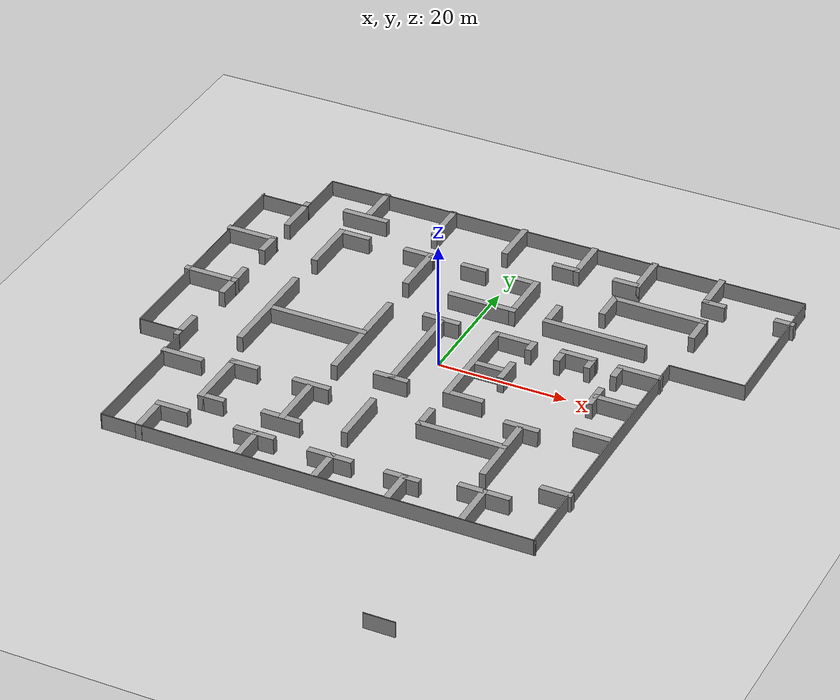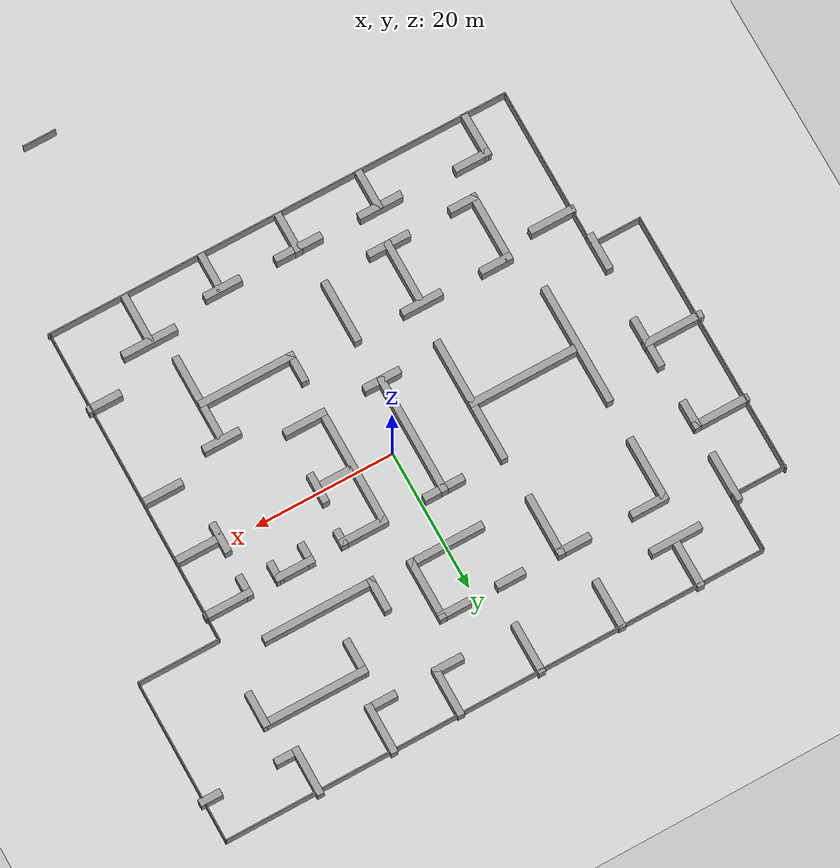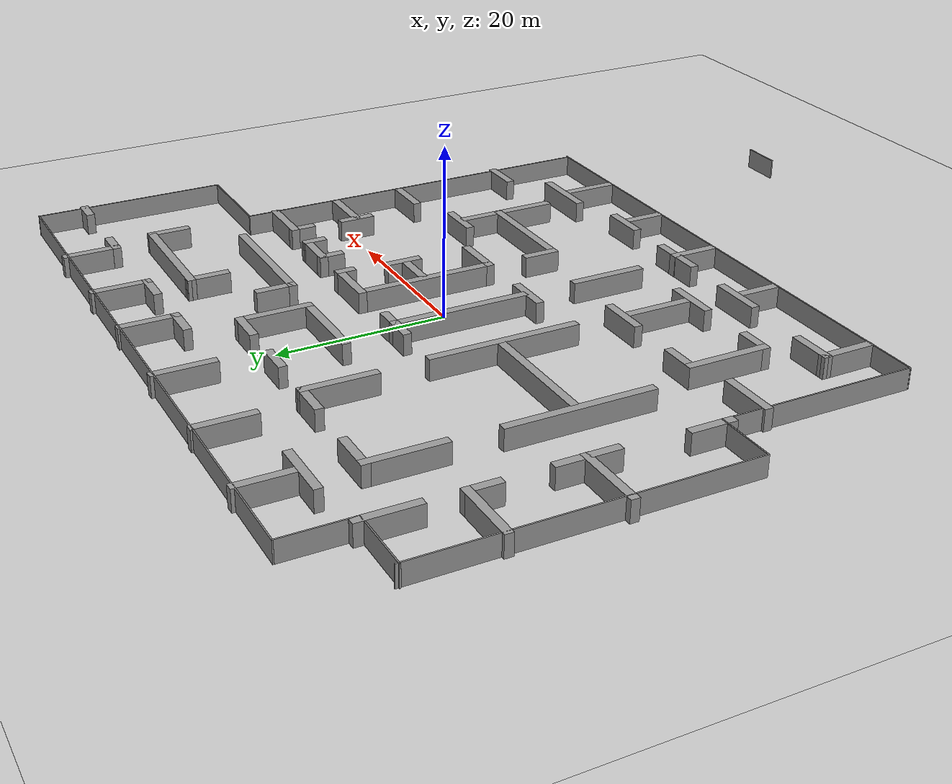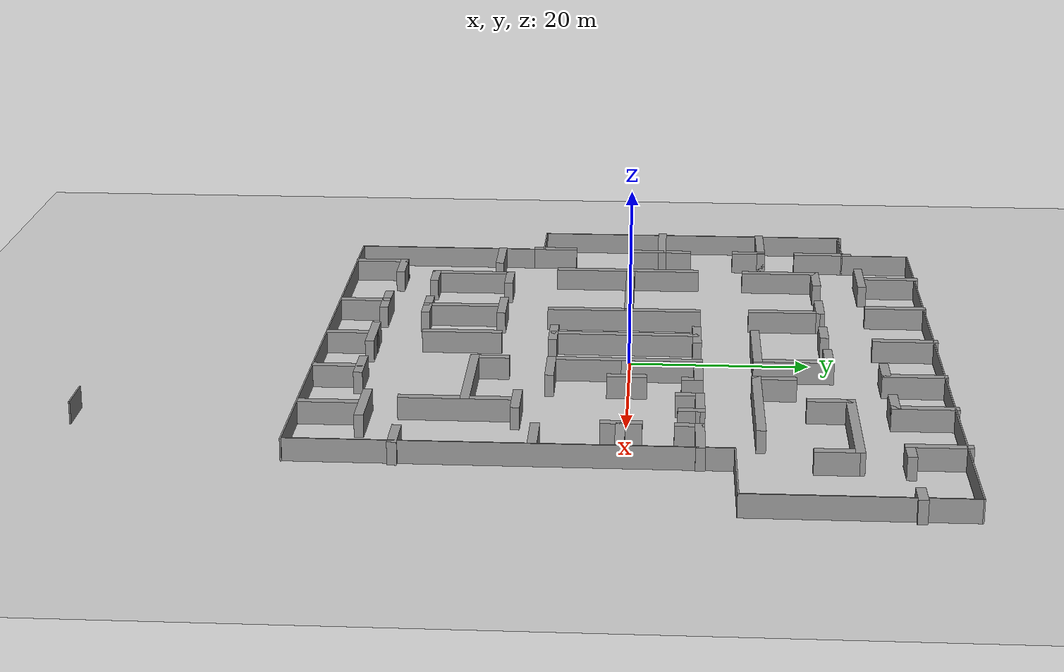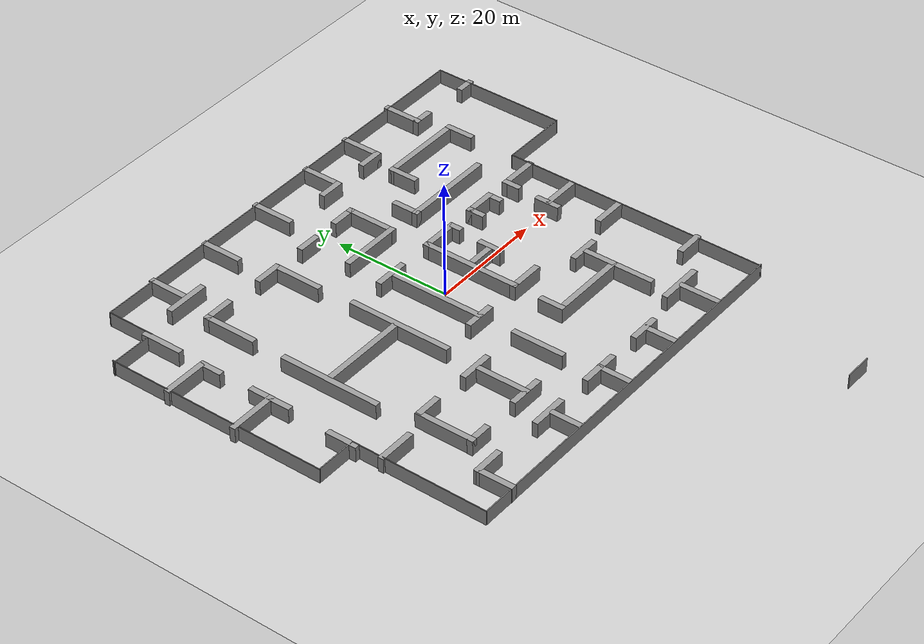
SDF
<sdf version="1.7">
 <world name="default">
  <light name="sun" type="directional">
   <pose>0 0 10 0 -0 0</pose>
   <diffuse>0.8 0.8 0.8 1</diffuse>
   <specular>0.2 0.2 0.2 1</specular>
   <attenuation>
    <range>1000</range>
    <constant>0.9</constant>
    <linear>0.01</linear>
    <quadratic>0.001</quadratic>
   </attenuation>
   <direction>-0.5 0.1 -0.9</direction>
   <spot><inner_angle>0</inner_angle><outer_angle>0</outer_angle><falloff>0</falloff></spot>
  </light>
  <model name="ground_plane">
   <static>1</static>
   <link name="Wall_split_y">
    <collision name="Wall_split_y_Collision">
     <geometry><box><size>1 100 2.5</size></box></geometry>
     <pose>4.0 0 1.25 0 -0 0</pose>
    </collision>
    <visual name="Wall_split_y_Visual">
     <pose>4.0 0 1.25 0 -0 0</pose>
     <geometry><box><size>1 100 2.5</size></box></geometry>
     <material>
      <script><uri>file://media/materials/scripts/gazebo.material</uri><name>Gazebo/Grey</name></script>
      <ambient>1 1 1 1</ambient>
     </material>
     <meta><layer>0</layer></meta>
    </visual>
   </link>
   <link name="link">
    <collision name="collision">
     <geometry><plane><normal>0 0 1</normal><size>100 100</size></plane></geometry>
     <surface><friction><ode><mu>100</mu><mu2>50</mu2></ode></friction></surface>
    </collision>
    <visual name="visual">
     <cast_shadows>0</cast_shadows>
     <geometry><plane><normal>0 0 1</normal><size>100 100</size></plane></geometry>
     <material>
      <script><uri>file://media/materials/scripts/gazebo.material</uri><name>Gazebo/Grey</name></script>
     </material>
    </visual>
   </link>
  </model>
  <gravity>0 0 -9.8</gravity>
  <magnetic_field>6e-06 2.3e-05 -4.2e-05</magnetic_field>
  <atmosphere type="adiabatic"/>
  <physics type="ode">
   <max_step_size>0.001</max_step_size>
   <real_time_factor>1</real_time_factor>
   <real_time_update_rate>1000</real_time_update_rate>
  </physics>
  <scene><ambient>0.4 0.4 0.4 1</ambient><background>0.7 0.7 0.7 1</background><shadows>1</shadows></scene>
  <spherical_coordinates>
   <surface_model>EARTH_WGS84</surface_model>
   <latitude_deg>0</latitude_deg>
   <longitude_deg>0</longitude_deg>
   <elevation>0</elevation>
   <heading_deg>0</heading_deg>
  </spherical_coordinates>
  <model name="map8">
   <pose>-0.03691 -11.806 0 0 -0 0</pose>
   <link name="Wall_0">
    <collision name="Wall_0_Collision">
     <geometry><box><size>38 0.15 2.5</size></box></geometry>
     <pose>0 0 1.25 0 -0 0</pose>
    </collision>
    <visual name="Wall_0_Visual">
     <pose>0 0 1.25 0 -0 0</pose>
     <geometry><box><size>38 0.15 2.5</size></box></geometry>
     <material>
      <script><uri>file://media/materials/scripts/gazebo.material</uri><name>Gazebo/Grey</name></script>
      <ambient>1 1 1 1</ambient>
     </material>
     <meta><layer>0</layer></meta>
    </visual>
    <pose>-42.5764 19.2242 0 0 -0 -1.5708</pose>
   </link>
   <link name="Wall_1">
    <collision name="Wall_1_Collision">
     <geometry><box><size>7.25 0.15 2.5</size></box></geometry>
     <pose>0 0 1.25 0 -0 0</pose>
    </collision>
    <visual name="Wall_1_Visual">
     <pose>0 0 1.25 0 -0 0</pose>
     <geometry><box><size>7.25 0.15 2.5</size></box></geometry>
     <material>
      <script><uri>file://media/materials/scripts/gazebo.material</uri><name>Gazebo/Grey</name></script>
      <ambient>1 1 1 1</ambient>
     </material>
     <meta><layer>0</layer></meta>
    </visual>
    <pose>-39.0264 0.299249 0 0 -0 0</pose>
   </link>
   <link name="Wall_100">
    <collision name="Wall_100_Collision">
     <geometry><box><size>7.85006 1 2.5</size></box></geometry>
     <pose>0 0 1.25 0 -0 0</pose>
    </collision>
    <visual name="Wall_100_Visual">
     <pose>0 0 1.25 0 -0 0</pose>
     <geometry><box><size>7.85006 1 2.5</size></box></geometry>
     <material>
      <script><uri>file://media/materials/scripts/gazebo.material</uri><name>Gazebo/Grey</name></script>
      <ambient>1 1 1 1</ambient>
     </material>
     <meta><layer>0</layer></meta>
    </visual>
    <pose>20.4101 -15.7299 0 0 -0 0</pose>
   </link>
   <link name="Wall_102">
    <collision name="Wall_102_Collision">
     <geometry><box><size>7.35 1 2.5</size></box></geometry>
     <pose>0 0 1.25 0 -0 0</pose>
    </collision>
    <visual name="Wall_102_Visual">
     <pose>0 0 1.25 0 -0 0</pose>
     <geometry><box><size>7.35 1 2.5</size></box></geometry>
     <material>
      <script><uri>file://media/materials/scripts/gazebo.material</uri><name>Gazebo/Grey</name></script>
      <ambient>1 1 1 1</ambient>
     </material>
     <meta><layer>0</layer></meta>
    </visual>
    <pose>20.3153 -19.0484 0 0 -0 -1.5708</pose>
   </link>
   <link name="Wall_104">
    <collision name="Wall_104_Collision">
     <geometry><box><size>4.75 0.15 2.5</size></box></geometry>
     <pose>0 0 1.25 0 -0 0</pose>
    </collision>
    <visual name="Wall_104_Visual">
     <pose>0 0 1.25 0 -0 0</pose>
     <geometry><box><size>4.75 0.15 2.5</size></box></geometry>
     <material>
      <script><uri>file://media/materials/scripts/gazebo.material</uri><name>Gazebo/Grey</name></script>
      <ambient>1 1 1 1</ambient>
     </material>
     <meta><layer>0</layer></meta>
    </visual>
    <pose>19.9492 -46.4469 0 0 -0 0</pose>
   </link>
   <link name="Wall_106">
    <collision name="Wall_106_Collision">
     <geometry><box><size>5.6 1 2.5</size></box></geometry>
     <pose>0 0 1.25 0 -0 0</pose>
    </collision>
    <visual name="Wall_106_Visual">
     <pose>0 0 1.25 0 -0 0</pose>
     <geometry><box><size>5.6 1 2.5</size></box></geometry>
     <material>
      <script><uri>file://media/materials/scripts/gazebo.material</uri><name>Gazebo/Grey</name></script>
      <ambient>1 1 1 1</ambient>
     </material>
     <meta><layer>0</layer></meta>
    </visual>
    <pose>9.10866 -19.9767 0 0 -0 -1.5708</pose>
   </link>
   <link name="Wall_108">
    <collision name="Wall_108_Collision">
     <geometry><box><size>5.34979 1 2.5</size></box></geometry>
     <pose>0 0 1.25 0 -0 0</pose>
    </collision>
    <visual name="Wall_108_Visual">
     <pose>0 0 1.25 0 -0 0</pose>
     <geometry><box><size>5.34979 1 2.5</size></box></geometry>
     <material>
      <script><uri>file://media/materials/scripts/gazebo.material</uri><name>Gazebo/Grey</name></script>
      <ambient>1 1 1 1</ambient>
     </material>
     <meta><layer>0</layer></meta>
    </visual>
    <pose>8.81006 -17.4709 0 0 -0 0</pose>
   </link>
   <link name="Wall_110">
    <collision name="Wall_110_Collision">
     <geometry><box><size>4.85021 1 2.5</size></box></geometry>
     <pose>0 0 1.25 0 -0 0</pose>
    </collision>
    <visual name="Wall_110_Visual">
     <pose>0 0 1.25 0 -0 0</pose>
     <geometry><box><size>4.85021 1 2.5</size></box></geometry>
     <material>
      <script><uri>file://media/materials/scripts/gazebo.material</uri><name>Gazebo/Grey</name></script>
      <ambient>1 1 1 1</ambient>
     </material>
     <meta><layer>0</layer></meta>
    </visual>
    <pose>29.2051 -11.4839 0 0 -0 3.14159</pose>
   </link>
   <link name="Wall_112">
    <collision name="Wall_112_Collision">
     <geometry><box><size>5.6 1 2.5</size></box></geometry>
     <pose>0 0 1.25 0 -0 0</pose>
    </collision>
    <visual name="Wall_112_Visual">
     <pose>0 0 1.25 0 -0 0</pose>
     <geometry><box><size>5.6 1 2.5</size></box></geometry>
     <material>
      <script><uri>file://media/materials/scripts/gazebo.material</uri><name>Gazebo/Grey</name></script>
      <ambient>1 1 1 1</ambient>
     </material>
     <meta><layer>0</layer></meta>
    </visual>
    <pose>28.2816 2.56125 0 0 -0 3.14159</pose>
   </link>
   <link name="Wall_114">
    <collision name="Wall_114_Collision">
     <geometry><box><size>4.35049 1 2.5</size></box></geometry>
     <pose>0 0 1.25 0 -0 0</pose>
    </collision>
    <visual name="Wall_114_Visual">
     <pose>0 0 1.25 0 -0 0</pose>
     <geometry><box><size>4.35049 1 2.5</size></box></geometry>
     <material>
      <script><uri>file://media/materials/scripts/gazebo.material</uri><name>Gazebo/Grey</name></script>
      <ambient>1 1 1 1</ambient>
     </material>
     <meta><layer>0</layer></meta>
    </visual>
    <pose>24.7471 11.3291 0 0 -0 -1.5708</pose>
   </link>
   <link name="Wall_116">
    <collision name="Wall_116_Collision">
     <geometry><box><size>6.5 1 2.5</size></box></geometry>
     <pose>0 0 1.25 0 -0 0</pose>
    </collision>
    <visual name="Wall_116_Visual">
     <pose>0 0 1.25 0 -0 0</pose>
     <geometry><box><size>6.5 1 2.5</size></box></geometry>
     <material>
      <script><uri>file://media/materials/scripts/gazebo.material</uri><name>Gazebo/Grey</name></script>
      <ambient>1 1 1 1</ambient>
     </material>
     <meta><layer>0</layer></meta>
    </visual>
    <pose>27.7851 11.2791 0 0 -0 0</pose>
   </link>
   <link name="Wall_118">
    <collision name="Wall_118_Collision">
     <geometry><box><size>3.10002 1 2.5</size></box></geometry>
     <pose>0 0 1.25 0 -0 0</pose>
    </collision>
    <visual name="Wall_118_Visual">
     <pose>0 0 1.25 0 -0 0</pose>
     <geometry><box><size>3.10002 1 2.5</size></box></geometry>
     <material>
      <script><uri>file://media/materials/scripts/gazebo.material</uri><name>Gazebo/Grey</name></script>
      <ambient>1 1 1 1</ambient>
     </material>
     <meta><layer>0</layer></meta>
    </visual>
    <pose>16.1686 18.4141 0 0 -0 1.56841</pose>
   </link>
   <link name="Wall_119">
    <collision name="Wall_119_Collision">
     <geometry><box><size>5.60601 1 2.5</size></box></geometry>
     <pose>0 0 1.25 0 -0 0</pose>
    </collision>
    <visual name="Wall_119_Visual">
     <pose>0 0 1.25 0 -0 0</pose>
     <geometry><box><size>5.60601 1 2.5</size></box></geometry>
     <material>
      <script><uri>file://media/materials/scripts/gazebo.material</uri><name>Gazebo/Grey</name></script>
      <ambient>1 1 1 1</ambient>
     </material>
     <meta><layer>0</layer></meta>
    </visual>
    <pose>18.4741 19.4586 0 0 -0 -0.002388</pose>
   </link>
   <link name="Wall_120">
    <collision name="Wall_120_Collision">
     <geometry><box><size>2.84995 1 2.5</size></box></geometry>
     <pose>0 0 1.25 0 -0 0</pose>
    </collision>
    <visual name="Wall_120_Visual">
     <pose>0 0 1.25 0 -0 0</pose>
     <geometry><box><size>2.84995 1 2.5</size></box></geometry>
     <material>
      <script><uri>file://media/materials/scripts/gazebo.material</uri><name>Gazebo/Grey</name></script>
      <ambient>1 1 1 1</ambient>
     </material>
     <meta><layer>0</layer></meta>
    </visual>
    <pose>20.7741 18.5281 0 0 -0 -1.57404</pose>
   </link>
   <link name="Wall_122">
    <collision name="Wall_122_Collision">
     <geometry><box><size>3.10002 1 2.5</size></box></geometry>
     <pose>0 0 1.25 0 -0 0</pose>
    </collision>
    <visual name="Wall_122_Visual">
     <pose>0 0 1.25 0 -0 0</pose>
     <geometry><box><size>3.10002 1 2.5</size></box></geometry>
     <material>
      <script><uri>file://media/materials/scripts/gazebo.material</uri><name>Gazebo/Grey</name></script>
      <ambient>1 1 1 1</ambient>
     </material>
     <meta><layer>0</layer></meta>
    </visual>
    <pose>25.0601 18.3141 0 0 -0 1.5708</pose>
   </link>
   <link name="Wall_123">
    <collision name="Wall_123_Collision">
     <geometry><box><size>6.85028 1 2.5</size></box></geometry>
     <pose>0 0 1.25 0 -0 0</pose>
    </collision>
    <visual name="Wall_123_Visual">
     <pose>0 0 1.25 0 -0 0</pose>
     <geometry><box><size>6.85028 1 2.5</size></box></geometry>
     <material>
      <script><uri>file://media/materials/scripts/gazebo.material</uri><name>Gazebo/Grey</name></script>
      <ambient>1 1 1 1</ambient>
     </material>
     <meta><layer>0</layer></meta>
    </visual>
    <pose>27.9851 19.3641 0 0 -0 0</pose>
   </link>
   <link name="Wall_125">
    <collision name="Wall_125_Collision">
     <geometry><box><size>6.5 1 2.5</size></box></geometry>
     <pose>0 0 1.25 0 -0 0</pose>
    </collision>
    <visual name="Wall_125_Visual">
     <pose>0 0 1.25 0 -0 0</pose>
     <geometry><box><size>6.5 1 2.5</size></box></geometry>
     <material>
      <script><uri>file://media/materials/scripts/gazebo.material</uri><name>Gazebo/Grey</name></script>
      <ambient>1 1 1 1</ambient>
     </material>
     <meta><layer>0</layer></meta>
    </visual>
    <pose>-25.5519 43.1051 0 0 -0 -1.5708</pose>
   </link>
   <link name="Wall_128">
    <collision name="Wall_128_Collision">
     <geometry><box><size>7.34976 1 2.5</size></box></geometry>
     <pose>0 0 1.25 0 -0 0</pose>
    </collision>
    <visual name="Wall_128_Visual">
     <pose>0 0 1.25 0 -0 0</pose>
     <geometry><box><size>7.34976 1 2.5</size></box></geometry>
     <material>
      <script><uri>file://media/materials/scripts/gazebo.material</uri><name>Gazebo/Grey</name></script>
      <ambient>1 1 1 1</ambient>
     </material>
     <meta><layer>0</layer></meta>
    </visual>
    <pose>-25.7469 39.3581 0 0 -0 0</pose>
   </link>
   <link name="Wall_13">
    <collision name="Wall_13_Collision">
     <geometry><box><size>7.1 1 2.5</size></box></geometry>
     <pose>0 0 1.25 0 -0 0</pose>
    </collision>
    <visual name="Wall_13_Visual">
     <pose>0 0 1.25 0 -0 0</pose>
     <geometry><box><size>7.1 1 2.5</size></box></geometry>
     <material>
      <script><uri>file://media/materials/scripts/gazebo.material</uri><name>Gazebo/Grey</name></script>
      <ambient>1 1 1 1</ambient>
     </material>
     <meta><layer>0</layer></meta>
    </visual>
    <pose>-35.3015 35.3852 0 0 -0 -1.5708</pose>
   </link>
   <link name="Wall_130">
    <collision name="Wall_130_Collision">
     <geometry><box><size>7.10006 1 2.5</size></box></geometry>
     <pose>0 0 1.25 0 -0 0</pose>
    </collision>
    <visual name="Wall_130_Visual">
     <pose>0 0 1.25 0 -0 0</pose>
     <geometry><box><size>7.10006 1 2.5</size></box></geometry>
     <material>
      <script><uri>file://media/materials/scripts/gazebo.material</uri><name>Gazebo/Grey</name></script>
      <ambient>1 1 1 1</ambient>
     </material>
     <meta><layer>0</layer></meta>
    </visual>
    <pose>-14.2239 42.6331 0 0 -0 -1.5708</pose>
   </link>
   <link name="Wall_132">
    <collision name="Wall_132_Collision">
     <geometry><box><size>7.35048 1 2.5</size></box></geometry>
     <pose>0 0 1.25 0 -0 0</pose>
    </collision>
    <visual name="Wall_132_Visual">
     <pose>0 0 1.25 0 -0 0</pose>
     <geometry><box><size>7.35048 1 2.5</size></box></geometry>
     <material>
      <script><uri>file://media/materials/scripts/gazebo.material</uri><name>Gazebo/Grey</name></script>
      <ambient>1 1 1 1</ambient>
     </material>
     <meta><layer>0</layer></meta>
    </visual>
    <pose>-2.48194 42.6901 0 0 -0 -1.5708</pose>
   </link>
   <link name="Wall_134">
    <collision name="Wall_134_Collision">
     <geometry><box><size>7.1 1 2.5</size></box></geometry>
     <pose>0 0 1.25 0 -0 0</pose>
    </collision>
    <visual name="Wall_134_Visual">
     <pose>0 0 1.25 0 -0 0</pose>
     <geometry><box><size>7.1 1 2.5</size></box></geometry>
     <material>
      <script><uri>file://media/materials/scripts/gazebo.material</uri><name>Gazebo/Grey</name></script>
      <ambient>1 1 1 1</ambient>
     </material>
     <meta><layer>0</layer></meta>
    </visual>
    <pose>9.12706 42.6551 0 0 -0 -1.5708</pose>
   </link>
   <link name="Wall_135">
    <collision name="Wall_135_Collision">
     <geometry><box><size>4.34987 1 2.5</size></box></geometry>
     <pose>0 0 1.25 0 -0 0</pose>
    </collision>
    <visual name="Wall_135_Visual">
     <pose>0 0 1.25 0 -0 0</pose>
     <geometry><box><size>4.34987 1 2.5</size></box></geometry>
     <material>
      <script><uri>file://media/materials/scripts/gazebo.material</uri><name>Gazebo/Grey</name></script>
      <ambient>1 1 1 1</ambient>
     </material>
     <meta><layer>0</layer></meta>
    </visual>
    <pose>7.45206 39.6051 0 0 -0 3.14159</pose>
   </link>
   <link name="Wall_138">
    <collision name="Wall_138_Collision">
     <geometry><box><size>3.10002 1 2.5</size></box></geometry>
     <pose>0 0 1.25 0 -0 0</pose>
    </collision>
    <visual name="Wall_138_Visual">
     <pose>0 0 1.25 0 -0 0</pose>
     <geometry><box><size>3.10002 1 2.5</size></box></geometry>
     <material>
      <script><uri>file://media/materials/scripts/gazebo.material</uri><name>Gazebo/Grey</name></script>
      <ambient>1 1 1 1</ambient>
     </material>
     <meta><layer>0</layer></meta>
    </visual>
    <pose>41.8161 40.1651 0 0 -0 3.14159</pose>
   </link>
   <link name="Wall_140">
    <collision name="Wall_140_Collision">
     <geometry><box><size>4.10043 1 2.5</size></box></geometry>
     <pose>0 0 1.25 0 -0 0</pose>
    </collision>
    <visual name="Wall_140_Visual">
     <pose>0 0 1.25 0 -0 0</pose>
     <geometry><box><size>4.10043 1 2.5</size></box></geometry>
     <material>
      <script><uri>file://media/materials/scripts/gazebo.material</uri><name>Gazebo/Grey</name></script>
      <ambient>1 1 1 1</ambient>
     </material>
     <meta><layer>0</layer></meta>
    </visual>
    <pose>-4.88394 33.7101 0 0 -0 0</pose>
   </link>
   <link name="Wall_15">
    <collision name="Wall_15_Collision">
     <geometry><box><size>8.1 1 2.5</size></box></geometry>
     <pose>0 0 1.25 0 -0 0</pose>
    </collision>
    <visual name="Wall_15_Visual">
     <pose>0 0 1.25 0 -0 0</pose>
     <geometry><box><size>8.1 1 2.5</size></box></geometry>
     <material>
      <script><uri>file://media/materials/scripts/gazebo.material</uri><name>Gazebo/Grey</name></script>
      <ambient>1 1 1 1</ambient>
     </material>
     <meta><layer>0</layer></meta>
    </visual>
    <pose>-38.9679 27.6751 0 0 -0 0</pose>
   </link>
   <link name="Wall_16">
    <collision name="Wall_16_Collision">
     <geometry><box><size>4.10042 1 2.5</size></box></geometry>
     <pose>0 0 1.25 0 -0 0</pose>
    </collision>
    <visual name="Wall_16_Visual">
     <pose>0 0 1.25 0 -0 0</pose>
     <geometry><box><size>4.10042 1 2.5</size></box></geometry>
     <material>
      <script><uri>file://media/materials/scripts/gazebo.material</uri><name>Gazebo/Grey</name></script>
      <ambient>1 1 1 1</ambient>
     </material>
     <meta><layer>0</layer></meta>
    </visual>
    <pose>-35.4179 26.1251 0 0 -0 -1.5708</pose>
   </link>
   <link name="Wall_18">
    <collision name="Wall_18_Collision">
     <geometry><box><size>8.60027 1 2.5</size></box></geometry>
     <pose>0 0 1.25 0 -0 0</pose>
    </collision>
    <visual name="Wall_18_Visual">
     <pose>0 0 1.25 0 -0 0</pose>
     <geometry><box><size>8.60027 1 2.5</size></box></geometry>
     <material>
      <script><uri>file://media/materials/scripts/gazebo.material</uri><name>Gazebo/Grey</name></script>
      <ambient>1 1 1 1</ambient>
     </material>
     <meta><layer>0</layer></meta>
    </visual>
    <pose>-39.0659 15.2401 0 0 -0 0</pose>
   </link>
   <link name="Wall_2">
    <collision name="Wall_2_Collision">
     <geometry><box><size>23.1966 0.15 2.5</size></box></geometry>
     <pose>0 0 1.25 0 -0 0</pose>
    </collision>
    <visual name="Wall_2_Visual">
     <pose>0 0 1.25 0 -0 0</pose>
     <geometry><box><size>23.1966 0.15 2.5</size></box></geometry>
     <material>
      <script><uri>file://media/materials/scripts/gazebo.material</uri><name>Gazebo/Grey</name></script>
      <ambient>1 1 1 1</ambient>
     </material>
     <meta><layer>0</layer></meta>
    </visual>
    <pose>-35.5215 -11.2238 0 0 -0 -1.57471</pose>
   </link>
   <link name="Wall_20">
    <collision name="Wall_20_Collision">
     <geometry><box><size>7.34976 1 2.5</size></box></geometry>
     <pose>0 0 1.25 0 -0 0</pose>
    </collision>
    <visual name="Wall_20_Visual">
     <pose>0 0 1.25 0 -0 0</pose>
     <geometry><box><size>7.34976 1 2.5</size></box></geometry>
     <material>
      <script><uri>file://media/materials/scripts/gazebo.material</uri><name>Gazebo/Grey</name></script>
      <ambient>1 1 1 1</ambient>
     </material>
     <meta><layer>0</layer></meta>
    </visual>
    <pose>-35.3009 15.1951 0 0 -0 -1.5708</pose>
   </link>
   <link name="Wall_22">
    <collision name="Wall_22_Collision">
     <geometry><box><size>17.3502 1 2.5</size></box></geometry>
     <pose>0 0 1.25 0 -0 0</pose>
    </collision>
    <visual name="Wall_22_Visual">
     <pose>0 0 1.25 0 -0 0</pose>
     <geometry><box><size>17.3502 1 2.5</size></box></geometry>
     <material>
      <script><uri>file://media/materials/scripts/gazebo.material</uri><name>Gazebo/Grey</name></script>
      <ambient>1 1 1 1</ambient>
     </material>
     <meta><layer>0</layer></meta>
    </visual>
    <pose>-27.3009 11.0651 0 0 -0 -1.5708</pose>
   </link>
   <link name="Wall_24">
    <collision name="Wall_24_Collision">
     <geometry><box><size>15.5 1 2.5</size></box></geometry>
     <pose>0 0 1.25 0 -0 0</pose>
    </collision>
    <visual name="Wall_24_Visual">
     <pose>0 0 1.25 0 -0 0</pose>
     <geometry><box><size>15.5 1 2.5</size></box></geometry>
     <material>
      <script><uri>file://media/materials/scripts/gazebo.material</uri><name>Gazebo/Grey</name></script>
      <ambient>1 1 1 1</ambient>
     </material>
     <meta><layer>0</layer></meta>
    </visual>
    <pose>-19.1239 11.4141 0 0 -0 0</pose>
   </link>
   <link name="Wall_26">
    <collision name="Wall_26_Collision">
     <geometry><box><size>17.8502 1 2.5</size></box></geometry>
     <pose>0 0 1.25 0 -0 0</pose>
    </collision>
    <visual name="Wall_26_Visual">
     <pose>0 0 1.25 0 -0 0</pose>
     <geometry><box><size>17.8502 1 2.5</size></box></geometry>
     <material>
      <script><uri>file://media/materials/scripts/gazebo.material</uri><name>Gazebo/Grey</name></script>
      <ambient>1 1 1 1</ambient>
     </material>
     <meta><layer>0</layer></meta>
    </visual>
    <pose>-11.8219 10.9021 0 0 -0 -1.5708</pose>
   </link>
   <link name="Wall_28">
    <collision name="Wall_28_Collision">
     <geometry><box><size>5.35 1 2.5</size></box></geometry>
     <pose>0 0 1.25 0 -0 0</pose>
    </collision>
    <visual name="Wall_28_Visual">
     <pose>0 0 1.25 0 -0 0</pose>
     <geometry><box><size>5.35 1 2.5</size></box></geometry>
     <material>
      <script><uri>file://media/materials/scripts/gazebo.material</uri><name>Gazebo/Grey</name></script>
      <ambient>1 1 1 1</ambient>
     </material>
     <meta><layer>0</layer></meta>
    </visual>
    <pose>-35.8726 1.74372 0 0 -0 -1.5708</pose>
   </link>
   <link name="Wall_3">
    <collision name="Wall_3_Collision">
     <geometry><box><size>67 0.15 2.5</size></box></geometry>
     <pose>0 0 1.25 0 -0 0</pose>
    </collision>
    <visual name="Wall_3_Visual">
     <pose>0 0 1.25 0 -0 0</pose>
     <geometry><box><size>67 0.15 2.5</size></box></geometry>
     <material>
      <script><uri>file://media/materials/scripts/gazebo.material</uri><name>Gazebo/Grey</name></script>
      <ambient>1 1 1 1</ambient>
     </material>
     <meta><layer>0</layer></meta>
    </visual>
    <pose>-2.14152 -22.7468 0 0 -0 0</pose>
   </link>
   <link name="Wall_30">
    <collision name="Wall_30_Collision">
     <geometry><box><size>6.59953 1 2.5</size></box></geometry>
     <pose>0 0 1.25 0 -0 0</pose>
    </collision>
    <visual name="Wall_30_Visual">
     <pose>0 0 1.25 0 -0 0</pose>
     <geometry><box><size>6.59953 1 2.5</size></box></geometry>
     <material>
      <script><uri>file://media/materials/scripts/gazebo.material</uri><name>Gazebo/Grey</name></script>
      <ambient>1 1 1 1</ambient>
     </material>
     <meta><layer>0</layer></meta>
    </visual>
    <pose>-32.5869 -4.93394 0 0 -0 0</pose>
   </link>
   <link name="Wall_32">
    <collision name="Wall_32_Collision">
     <geometry><box><size>5.35 1 2.5</size></box></geometry>
     <pose>0 0 1.25 0 -0 0</pose>
    </collision>
    <visual name="Wall_32_Visual">
     <pose>0 0 1.25 0 -0 0</pose>
     <geometry><box><size>5.35 1 2.5</size></box></geometry>
     <material>
      <script><uri>file://media/materials/scripts/gazebo.material</uri><name>Gazebo/Grey</name></script>
      <ambient>1 1 1 1</ambient>
     </material>
     <meta><layer>0</layer></meta>
    </visual>
    <pose>-24.9539 33.9351 0 0 -0 3.14159</pose>
   </link>
   <link name="Wall_33">
    <collision name="Wall_33_Collision">
     <geometry><box><size>9.34955 1 2.5</size></box></geometry>
     <pose>0 0 1.25 0 -0 0</pose>
    </collision>
    <visual name="Wall_33_Visual">
     <pose>0 0 1.25 0 -0 0</pose>
     <geometry><box><size>9.34955 1 2.5</size></box></geometry>
     <material>
      <script><uri>file://media/materials/scripts/gazebo.material</uri><name>Gazebo/Grey</name></script>
      <ambient>1 1 1 1</ambient>
     </material>
     <meta><layer>0</layer></meta>
    </visual>
    <pose>-27.1289 29.7601 0 0 -0 -1.5708</pose>
   </link>
   <link name="Wall_35">
    <collision name="Wall_35_Collision">
     <geometry><box><size>4.8498 1 2.5</size></box></geometry>
     <pose>0 0 1.25 0 -0 0</pose>
    </collision>
    <visual name="Wall_35_Visual">
     <pose>0 0 1.25 0 -0 0</pose>
     <geometry><box><size>4.8498 1 2.5</size></box></geometry>
     <material>
      <script><uri>file://media/materials/scripts/gazebo.material</uri><name>Gazebo/Grey</name></script>
      <ambient>1 1 1 1</ambient>
     </material>
     <meta><layer>0</layer></meta>
    </visual>
    <pose>-14.0419 33.7621 0 0 -0 0</pose>
   </link>
   <link name="Wall_36">
    <collision name="Wall_36_Collision">
     <geometry><box><size>8.85051 1 2.5</size></box></geometry>
     <pose>0 0 1.25 0 -0 0</pose>
    </collision>
    <visual name="Wall_36_Visual">
     <pose>0 0 1.25 0 -0 0</pose>
     <geometry><box><size>8.85051 1 2.5</size></box></geometry>
     <material>
      <script><uri>file://media/materials/scripts/gazebo.material</uri><name>Gazebo/Grey</name></script>
      <ambient>1 1 1 1</ambient>
     </material>
     <meta><layer>0</layer></meta>
    </visual>
    <pose>-12.1314 29.8371 0 0 -0 -1.57449</pose>
   </link>
   <link name="Wall_38">
    <collision name="Wall_38_Collision">
     <geometry><box><size>4.6 1 2.5</size></box></geometry>
     <pose>0 0 1.25 0 -0 0</pose>
    </collision>
    <visual name="Wall_38_Visual">
     <pose>0 0 1.25 0 -0 0</pose>
     <geometry><box><size>4.6 1 2.5</size></box></geometry>
     <material>
      <script><uri>file://media/materials/scripts/gazebo.material</uri><name>Gazebo/Grey</name></script>
      <ambient>1 1 1 1</ambient>
     </material>
     <meta><layer>0</layer></meta>
    </visual>
    <pose>3.28206 33.7621 0 0 -0 0</pose>
   </link>
   <link name="Wall_39">
    <collision name="Wall_39_Collision">
     <geometry><box><size>8.85046 1 2.5</size></box></geometry>
     <pose>0 0 1.25 0 -0 0</pose>
    </collision>
    <visual name="Wall_39_Visual">
     <pose>0 0 1.25 0 -0 0</pose>
     <geometry><box><size>8.85046 1 2.5</size></box></geometry>
     <material>
      <script><uri>file://media/materials/scripts/gazebo.material</uri><name>Gazebo/Grey</name></script>
      <ambient>1 1 1 1</ambient>
     </material>
     <meta><layer>0</layer></meta>
    </visual>
    <pose>5.08206 29.8371 0 0 -0 -1.5708</pose>
   </link>
   <link name="Wall_4">
    <collision name="Wall_4_Collision">
     <geometry><box><size>45.6961 0.15 2.5</size></box></geometry>
     <pose>0 0 1.25 0 -0 0</pose>
    </collision>
    <visual name="Wall_4_Visual">
     <pose>0 0 1.25 0 -0 0</pose>
     <geometry><box><size>45.6961 0.15 2.5</size></box></geometry>
     <material>
      <script><uri>file://media/materials/scripts/gazebo.material</uri><name>Gazebo/Grey</name></script>
      <ambient>1 1 1 1</ambient>
     </material>
     <meta><layer>0</layer></meta>
    </visual>
    <pose>31.0879 0.026206 0 0 -0 1.56923</pose>
   </link>
   <link name="Wall_40">
    <collision name="Wall_40_Collision">
     <geometry><box><size>10.8499 1 2.5</size></box></geometry>
     <pose>0 0 1.25 0 -0 0</pose>
    </collision>
    <visual name="Wall_40_Visual">
     <pose>0 0 1.25 0 -0 0</pose>
     <geometry><box><size>10.8499 1 2.5</size></box></geometry>
     <material>
      <script><uri>file://media/materials/scripts/gazebo.material</uri><name>Gazebo/Grey</name></script>
      <ambient>1 1 1 1</ambient>
     </material>
     <meta><layer>0</layer></meta>
    </visual>
    <pose>0.157063 25.9121 0 0 -0 3.14159</pose>
   </link>
   <link name="Wall_42">
    <collision name="Wall_42_Collision">
     <geometry><box><size>5.84966 1 2.5</size></box></geometry>
     <pose>0 0 1.25 0 -0 0</pose>
    </collision>
    <visual name="Wall_42_Visual">
     <pose>0 0 1.25 0 -0 0</pose>
     <geometry><box><size>5.84966 1 2.5</size></box></geometry>
     <material>
      <script><uri>file://media/materials/scripts/gazebo.material</uri><name>Gazebo/Grey</name></script>
      <ambient>1 1 1 1</ambient>
     </material>
     <meta><layer>0</layer></meta>
    </visual>
    <pose>-3.22294 19.3271 0 0 -0 0</pose>
   </link>
   <link name="Wall_44">
    <collision name="Wall_44_Collision">
     <geometry><box><size>5.35 1 2.5</size></box></geometry>
     <pose>0 0 1.25 0 -0 0</pose>
    </collision>
    <visual name="Wall_44_Visual">
     <pose>0 0 1.25 0 -0 0</pose>
     <geometry><box><size>5.35 1 2.5</size></box></geometry>
     <material>
      <script><uri>file://media/materials/scripts/gazebo.material</uri><name>Gazebo/Grey</name></script>
      <ambient>1 1 1 1</ambient>
     </material>
     <meta><layer>0</layer></meta>
    </visual>
    <pose>-3.21194 3.06256 0 0 -0 0</pose>
   </link>
   <link name="Wall_46">
    <collision name="Wall_46_Collision">
     <geometry><box><size>17.1002 1 2.5</size></box></geometry>
     <pose>0 0 1.25 0 -0 0</pose>
    </collision>
    <visual name="Wall_46_Visual">
     <pose>0 0 1.25 0 -0 0</pose>
     <geometry><box><size>17.1002 1 2.5</size></box></geometry>
     <material>
      <script><uri>file://media/materials/scripts/gazebo.material</uri><name>Gazebo/Grey</name></script>
      <ambient>1 1 1 1</ambient>
     </material>
     <meta><layer>0</layer></meta>
    </visual>
    <pose>-3.12694 11.2771 0 0 -0 -1.5708</pose>
   </link>
   <link name="Wall_48">
    <collision name="Wall_48_Collision">
     <geometry><box><size>2.35 1 2.5</size></box></geometry>
     <pose>0 0 1.25 0 -0 0</pose>
    </collision>
    <visual name="Wall_48_Visual">
     <pose>0 0 1.25 0 -0 0</pose>
     <geometry><box><size>2.35 1 2.5</size></box></geometry>
     <material>
      <script><uri>file://media/materials/scripts/gazebo.material</uri><name>Gazebo/Grey</name></script>
      <ambient>1 1 1 1</ambient>
     </material>
     <meta><layer>0</layer></meta>
    </visual>
    <pose>11.3951 18.6971 0 0 -0 1.5708</pose>
   </link>
   <link name="Wall_49">
    <collision name="Wall_49_Collision">
     <geometry><box><size>6.85 1 2.5</size></box></geometry>
     <pose>0 0 1.25 0 -0 0</pose>
    </collision>
    <visual name="Wall_49_Visual">
     <pose>0 0 1.25 0 -0 0</pose>
     <geometry><box><size>6.85 1 2.5</size></box></geometry>
     <material>
      <script><uri>file://media/materials/scripts/gazebo.material</uri><name>Gazebo/Grey</name></script>
      <ambient>1 1 1 1</ambient>
     </material>
     <meta><layer>0</layer></meta>
    </visual>
    <pose>8.47006 19.3721 0 0 -0 3.14159</pose>
   </link>
   <link name="Wall_5">
    <collision name="Wall_5_Collision">
     <geometry><box><size>11.75 0.15 2.5</size></box></geometry>
     <pose>0 0 1.25 0 -0 0</pose>
    </collision>
    <visual name="Wall_5_Visual">
     <pose>0 0 1.25 0 -0 0</pose>
     <geometry><box><size>11.75 0.15 2.5</size></box></geometry>
     <material>
      <script><uri>file://media/materials/scripts/gazebo.material</uri><name>Gazebo/Grey</name></script>
      <ambient>1 1 1 1</ambient>
     </material>
     <meta><layer>0</layer></meta>
    </visual>
    <pose>36.9236 22.7992 0 0 -0 0</pose>
   </link>
   <link name="Wall_50">
    <collision name="Wall_50_Collision">
     <geometry><box><size>17.0996 1 2.5</size></box></geometry>
     <pose>0 0 1.25 0 -0 0</pose>
    </collision>
    <visual name="Wall_50_Visual">
     <pose>0 0 1.25 0 -0 0</pose>
     <geometry><box><size>17.0996 1 2.5</size></box></geometry>
     <material>
      <script><uri>file://media/materials/scripts/gazebo.material</uri><name>Gazebo/Grey</name></script>
      <ambient>1 1 1 1</ambient>
     </material>
     <meta><layer>0</layer></meta>
    </visual>
    <pose>5.54506 11.3221 0 0 -0 -1.5708</pose>
   </link>
   <link name="Wall_51">
    <collision name="Wall_51_Collision">
     <geometry><box><size>6.10014 1 2.5</size></box></geometry>
     <pose>0 0 1.25 0 -0 0</pose>
    </collision>
    <visual name="Wall_51_Visual">
     <pose>0 0 1.25 0 -0 0</pose>
     <geometry><box><size>6.10014 1 2.5</size></box></geometry>
     <material>
      <script><uri>file://media/materials/scripts/gazebo.material</uri><name>Gazebo/Grey</name></script>
      <ambient>1 1 1 1</ambient>
     </material>
     <meta><layer>0</layer></meta>
    </visual>
    <pose>8.09506 3.27206 0 0 -0 0</pose>
   </link>
   <link name="Wall_53">
    <collision name="Wall_53_Collision">
     <geometry><box><size>4.5 1 2.5</size></box></geometry>
     <pose>0 0 1.25 0 -0 0</pose>
    </collision>
    <visual name="Wall_53_Visual">
     <pose>0 0 1.25 0 -0 0</pose>
     <geometry><box><size>4.5 1 2.5</size></box></geometry>
     <material>
      <script><uri>file://media/materials/scripts/gazebo.material</uri><name>Gazebo/Grey</name></script>
      <ambient>1 1 1 1</ambient>
     </material>
     <meta><layer>0</layer></meta>
    </visual>
    <pose>8.07106 11.5011 0 0 -0 0</pose>
   </link>
   <link name="Wall_55">
    <collision name="Wall_55_Collision">
     <geometry><box><size>4.35024 1 2.5</size></box></geometry>
     <pose>0 0 1.25 0 -0 0</pose>
    </collision>
    <visual name="Wall_55_Visual">
     <pose>0 0 1.25 0 -0 0</pose>
     <geometry><box><size>4.35024 1 2.5</size></box></geometry>
     <material>
      <script><uri>file://media/materials/scripts/gazebo.material</uri><name>Gazebo/Grey</name></script>
      <ambient>1 1 1 1</ambient>
     </material>
     <meta><layer>0</layer></meta>
    </visual>
    <pose>10.7861 11.6521 0 0 -0 -1.5708</pose>
   </link>
   <link name="Wall_57">
    <collision name="Wall_57_Collision">
     <geometry><box><size>4.85 1 2.5</size></box></geometry>
     <pose>0 0 1.25 0 -0 0</pose>
    </collision>
    <visual name="Wall_57_Visual">
     <pose>0 0 1.25 0 -0 0</pose>
     <geometry><box><size>4.85 1 2.5</size></box></geometry>
     <material>
      <script><uri>file://media/materials/scripts/gazebo.material</uri><name>Gazebo/Grey</name></script>
      <ambient>1 1 1 1</ambient>
     </material>
     <meta><layer>0</layer></meta>
    </visual>
    <pose>10.6991 27.4891 0 0 -0 -1.5708</pose>
   </link>
   <link name="Wall_58">
    <collision name="Wall_58_Collision">
     <geometry><box><size>16.1005 1 2.5</size></box></geometry>
     <pose>0 0 1.25 0 -0 0</pose>
    </collision>
    <visual name="Wall_58_Visual">
     <pose>0 0 1.25 0 -0 0</pose>
     <geometry><box><size>16.1005 1 2.5</size></box></geometry>
     <material>
      <script><uri>file://media/materials/scripts/gazebo.material</uri><name>Gazebo/Grey</name></script>
      <ambient>1 1 1 1</ambient>
     </material>
     <meta><layer>0</layer></meta>
    </visual>
    <pose>18.2491 25.5641 0 0 -0 0</pose>
   </link>
   <link name="Wall_6">
    <collision name="Wall_6_Collision">
     <geometry><box><size>23.25 0.15 2.5</size></box></geometry>
     <pose>0 0 1.25 0 -0 0</pose>
    </collision>
    <visual name="Wall_6_Visual">
     <pose>0 0 1.25 0 -0 0</pose>
     <geometry><box><size>23.25 0.15 2.5</size></box></geometry>
     <material>
      <script><uri>file://media/materials/scripts/gazebo.material</uri><name>Gazebo/Grey</name></script>
      <ambient>1 1 1 1</ambient>
     </material>
     <meta><layer>0</layer></meta>
    </visual>
    <pose>42.7236 34.3492 0 0 -0 1.5708</pose>
   </link>
   <link name="Wall_60">
    <collision name="Wall_60_Collision">
     <geometry><box><size>5.10019 1 2.5</size></box></geometry>
     <pose>0 0 1.25 0 -0 0</pose>
    </collision>
    <visual name="Wall_60_Visual">
     <pose>0 0 1.25 0 -0 0</pose>
     <geometry><box><size>5.10019 1 2.5</size></box></geometry>
     <material>
      <script><uri>file://media/materials/scripts/gazebo.material</uri><name>Gazebo/Grey</name></script>
      <ambient>1 1 1 1</ambient>
     </material>
     <meta><layer>0</layer></meta>
    </visual>
    <pose>17.1341 33.1601 0 0 -0 1.5708</pose>
   </link>
   <link name="Wall_61">
    <collision name="Wall_61_Collision">
     <geometry><box><size>15.1003 1 2.5</size></box></geometry>
     <pose>0 0 1.25 0 -0 0</pose>
    </collision>
    <visual name="Wall_61_Visual">
     <pose>0 0 1.25 0 -0 0</pose>
     <geometry><box><size>15.1003 1 2.5</size></box></geometry>
     <material>
      <script><uri>file://media/materials/scripts/gazebo.material</uri><name>Gazebo/Grey</name></script>
      <ambient>1 1 1 1</ambient>
     </material>
     <meta><layer>0</layer></meta>
    </visual>
    <pose>24.1841 35.1881 0 0 -0 -0.003121</pose>
   </link>
   <link name="Wall_62">
    <collision name="Wall_62_Collision">
     <geometry><box><size>5.10011 1 2.5</size></box></geometry>
     <pose>0 0 1.25 0 -0 0</pose>
    </collision>
    <visual name="Wall_62_Visual">
     <pose>0 0 1.25 0 -0 0</pose>
     <geometry><box><size>5.10011 1 2.5</size></box></geometry>
     <material>
      <script><uri>file://media/materials/scripts/gazebo.material</uri><name>Gazebo/Grey</name></script>
      <ambient>1 1 1 1</ambient>
     </material>
     <meta><layer>0</layer></meta>
    </visual>
    <pose>31.2341 33.1161 0 0 -0 -1.5708</pose>
   </link>
   <link name="Wall_64">
    <collision name="Wall_64_Collision">
     <geometry><box><size>7.1 1 2.5</size></box></geometry>
     <pose>0 0 1.25 0 -0 0</pose>
    </collision>
    <visual name="Wall_64_Visual">
     <pose>0 0 1.25 0 -0 0</pose>
     <geometry><box><size>7.1 1 2.5</size></box></geometry>
     <material>
      <script><uri>file://media/materials/scripts/gazebo.material</uri><name>Gazebo/Grey</name></script>
      <ambient>1 1 1 1</ambient>
     </material>
     <meta><layer>0</layer></meta>
    </visual>
    <pose>18.7861 42.7981 0 0 -0 -1.5708</pose>
   </link>
   <link name="Wall_65">
    <collision name="Wall_65_Collision">
     <geometry><box><size>4.34956 1 2.5</size></box></geometry>
     <pose>0 0 1.25 0 -0 0</pose>
    </collision>
    <visual name="Wall_65_Visual">
     <pose>0 0 1.25 0 -0 0</pose>
     <geometry><box><size>4.34956 1 2.5</size></box></geometry>
     <material>
      <script><uri>file://media/materials/scripts/gazebo.material</uri><name>Gazebo/Grey</name></script>
      <ambient>1 1 1 1</ambient>
     </material>
     <meta><layer>0</layer></meta>
    </visual>
    <pose>17.1111 39.7481 0 0 -0 3.14159</pose>
   </link>
   <link name="Wall_67">
    <collision name="Wall_67_Collision">
     <geometry><box><size>6.84959 1 2.5</size></box></geometry>
     <pose>0 0 1.25 0 -0 0</pose>
    </collision>
    <visual name="Wall_67_Visual">
     <pose>0 0 1.25 0 -0 0</pose>
     <geometry><box><size>6.84959 1 2.5</size></box></geometry>
     <material>
      <script><uri>file://media/materials/scripts/gazebo.material</uri><name>Gazebo/Grey</name></script>
      <ambient>1 1 1 1</ambient>
     </material>
     <meta><layer>0</layer></meta>
    </visual>
    <pose>29.4821 43.0971 0 0 -0 -1.5708</pose>
   </link>
   <link name="Wall_68">
    <collision name="Wall_68_Collision">
     <geometry><box><size>3.6001 1 2.5</size></box></geometry>
     <pose>0 0 1.25 0 -0 0</pose>
    </collision>
    <visual name="Wall_68_Visual">
     <pose>0 0 1.25 0 -0 0</pose>
     <geometry><box><size>3.6001 1 2.5</size></box></geometry>
     <material>
      <script><uri>file://media/materials/scripts/gazebo.material</uri><name>Gazebo/Grey</name></script>
      <ambient>1 1 1 1</ambient>
     </material>
     <meta><layer>0</layer></meta>
    </visual>
    <pose>30.7821 40.1721 0 0 -0 0</pose>
   </link>
   <link name="Wall_7">
    <collision name="Wall_7_Collision">
     <geometry><box><size>77.75 0.15 2.5</size></box></geometry>
     <pose>0 0 1.25 0 -0 0</pose>
    </collision>
    <visual name="Wall_7_Visual">
     <pose>0 0 1.25 0 -0 0</pose>
     <geometry><box><size>77.75 0.15 2.5</size></box></geometry>
     <material>
      <script><uri>file://media/materials/scripts/gazebo.material</uri><name>Gazebo/Grey</name></script>
      <ambient>1 1 1 1</ambient>
     </material>
     <meta><layer>0</layer></meta>
    </visual>
    <pose>3.92357 45.8992 0 0 -0 3.14159</pose>
   </link>
   <link name="Wall_70">
    <collision name="Wall_70_Collision">
     <geometry><box><size>4.34963 1 2.5</size></box></geometry>
     <pose>0 0 1.25 0 -0 0</pose>
    </collision>
    <visual name="Wall_70_Visual">
     <pose>0 0 1.25 0 -0 0</pose>
     <geometry><box><size>4.34963 1 2.5</size></box></geometry>
     <material>
      <script><uri>file://media/materials/scripts/gazebo.material</uri><name>Gazebo/Grey</name></script>
      <ambient>1 1 1 1</ambient>
     </material>
     <meta><layer>0</layer></meta>
    </visual>
    <pose>5.48206 -3.56594 0 0 -0 -1.5708</pose>
   </link>
   <link name="Wall_71">
    <collision name="Wall_71_Collision">
     <geometry><box><size>13.85 1 2.5</size></box></geometry>
     <pose>0 0 1.25 0 -0 0</pose>
    </collision>
    <visual name="Wall_71_Visual">
     <pose>0 0 1.25 0 -0 0</pose>
     <geometry><box><size>13.85 1 2.5</size></box></geometry>
     <material>
      <script><uri>file://media/materials/scripts/gazebo.material</uri><name>Gazebo/Grey</name></script>
      <ambient>1 1 1 1</ambient>
     </material>
     <meta><layer>0</layer></meta>
    </visual>
    <pose>11.9071 -5.24094 0 0 -0 0</pose>
   </link>
   <link name="Wall_73">
    <collision name="Wall_73_Collision">
     <geometry><box><size>5.34966 1 2.5</size></box></geometry>
     <pose>0 0 1.25 0 -0 0</pose>
    </collision>
    <visual name="Wall_73_Visual">
     <pose>0 0 1.25 0 -0 0</pose>
     <geometry><box><size>5.34966 1 2.5</size></box></geometry>
     <material>
      <script><uri>file://media/materials/scripts/gazebo.material</uri><name>Gazebo/Grey</name></script>
      <ambient>1 1 1 1</ambient>
     </material>
     <meta><layer>0</layer></meta>
    </visual>
    <pose>18.5271 0.196056 0 0 -0 0</pose>
   </link>
   <link name="Wall_75">
    <collision name="Wall_75_Collision">
     <geometry><box><size>12.25 1 2.5</size></box></geometry>
     <pose>0 0 1.25 0 -0 0</pose>
    </collision>
    <visual name="Wall_75_Visual">
     <pose>0 0 1.25 0 -0 0</pose>
     <geometry><box><size>12.25 1 2.5</size></box></geometry>
     <material>
      <script><uri>file://media/materials/scripts/gazebo.material</uri><name>Gazebo/Grey</name></script>
      <ambient>1 1 1 1</ambient>
     </material>
     <meta><layer>0</layer></meta>
    </visual>
    <pose>18.4477 -6.19194 0 0 -0 -1.5708</pose>
   </link>
   <link name="Wall_77">
    <collision name="Wall_77_Collision">
     <geometry><box><size>4.59963 1 2.5</size></box></geometry>
     <pose>0 0 1.25 0 -0 0</pose>
    </collision>
    <visual name="Wall_77_Visual">
     <pose>0 0 1.25 0 -0 0</pose>
     <geometry><box><size>4.59963 1 2.5</size></box></geometry>
     <material>
      <script><uri>file://media/materials/scripts/gazebo.material</uri><name>Gazebo/Grey</name></script>
      <ambient>1 1 1 1</ambient>
     </material>
     <meta><layer>0</layer></meta>
    </visual>
    <pose>-23.4239 -3.29494 0 0 -0 3.14159</pose>
   </link>
   <link name="Wall_78">
    <collision name="Wall_78_Collision">
     <geometry><box><size>10.0999 1 2.5</size></box></geometry>
     <pose>0 0 1.25 0 -0 0</pose>
    </collision>
    <visual name="Wall_78_Visual">
     <pose>0 0 1.25 0 -0 0</pose>
     <geometry><box><size>10.0999 1 2.5</size></box></geometry>
     <material>
      <script><uri>file://media/materials/scripts/gazebo.material</uri><name>Gazebo/Grey</name></script>
      <ambient>1 1 1 1</ambient>
     </material>
     <meta><layer>0</layer></meta>
    </visual>
    <pose>-25.2239 -7.84494 0 0 -0 -1.5708</pose>
   </link>
   <link name="Wall_79">
    <collision name="Wall_79_Collision">
     <geometry><box><size>4.10037 1 2.5</size></box></geometry>
     <pose>0 0 1.25 0 -0 0</pose>
    </collision>
    <visual name="Wall_79_Visual">
     <pose>0 0 1.25 0 -0 0</pose>
     <geometry><box><size>4.10037 1 2.5</size></box></geometry>
     <material>
      <script><uri>file://media/materials/scripts/gazebo.material</uri><name>Gazebo/Grey</name></script>
      <ambient>1 1 1 1</ambient>
     </material>
     <meta><layer>0</layer></meta>
    </visual>
    <pose>-23.6739 -12.3949 0 0 -0 0</pose>
   </link>
   <link name="Wall_8">
    <collision name="Wall_8_Collision">
     <geometry><box><size>8.25 0.15 2.5</size></box></geometry>
     <pose>0 0 1.25 0 -0 0</pose>
    </collision>
    <visual name="Wall_8_Visual">
     <pose>0 0 1.25 0 -0 0</pose>
     <geometry><box><size>8.25 0.15 2.5</size></box></geometry>
     <material>
      <script><uri>file://media/materials/scripts/gazebo.material</uri><name>Gazebo/Grey</name></script>
      <ambient>1 1 1 1</ambient>
     </material>
     <meta><layer>0</layer></meta>
    </visual>
    <pose>-34.8764 41.8492 0 0 -0 -1.5708</pose>
   </link>
   <link name="Wall_81">
    <collision name="Wall_81_Collision">
     <geometry><box><size>5.85006 1 2.5</size></box></geometry>
     <pose>0 0 1.25 0 -0 0</pose>
    </collision>
    <visual name="Wall_81_Visual">
     <pose>0 0 1.25 0 -0 0</pose>
     <geometry><box><size>5.85006 1 2.5</size></box></geometry>
     <material>
      <script><uri>file://media/materials/scripts/gazebo.material</uri><name>Gazebo/Grey</name></script>
      <ambient>1 1 1 1</ambient>
     </material>
     <meta><layer>0</layer></meta>
    </visual>
    <pose>-12.5899 -3.38194 0 0 -0 0</pose>
   </link>
   <link name="Wall_83">
    <collision name="Wall_83_Collision">
     <geometry><box><size>9 1 2.5</size></box></geometry>
     <pose>0 0 1.25 0 -0 0</pose>
    </collision>
    <visual name="Wall_83_Visual">
     <pose>0 0 1.25 0 -0 0</pose>
     <geometry><box><size>9 1 2.5</size></box></geometry>
     <material>
      <script><uri>file://media/materials/scripts/gazebo.material</uri><name>Gazebo/Grey</name></script>
      <ambient>1 1 1 1</ambient>
     </material>
     <meta><layer>0</layer></meta>
    </visual>
    <pose>-12.5359 -8.22094 0 0 -0 -1.5708</pose>
   </link>
   <link name="Wall_85">
    <collision name="Wall_85_Collision">
     <geometry><box><size>6.1 1 2.5</size></box></geometry>
     <pose>0 0 1.25 0 -0 0</pose>
    </collision>
    <visual name="Wall_85_Visual">
     <pose>0 0 1.25 0 -0 0</pose>
     <geometry><box><size>6.1 1 2.5</size></box></geometry>
     <material>
      <script><uri>file://media/materials/scripts/gazebo.material</uri><name>Gazebo/Grey</name></script>
      <ambient>1 1 1 1</ambient>
     </material>
     <meta><layer>0</layer></meta>
    </visual>
    <pose>-12.6462 -12.2374 0 0 -0 0</pose>
   </link>
   <link name="Wall_87">
    <collision name="Wall_87_Collision">
     <geometry><box><size>9.09994 1 2.5</size></box></geometry>
     <pose>0 0 1.25 0 -0 0</pose>
    </collision>
    <visual name="Wall_87_Visual">
     <pose>0 0 1.25 0 -0 0</pose>
     <geometry><box><size>9.09994 1 2.5</size></box></geometry>
     <material>
      <script><uri>file://media/materials/scripts/gazebo.material</uri><name>Gazebo/Grey</name></script>
      <ambient>1 1 1 1</ambient>
     </material>
     <meta><layer>0</layer></meta>
    </visual>
    <pose>-3.01494 -7.34494 0 0 -0 -1.5708</pose>
   </link>
   <link name="Wall_89">
    <collision name="Wall_89_Collision">
     <geometry><box><size>5.25 1 2.5</size></box></geometry>
     <pose>0 0 1.25 0 -0 0</pose>
    </collision>
    <visual name="Wall_89_Visual">
     <pose>0 0 1.25 0 -0 0</pose>
     <geometry><box><size>5.25 1 2.5</size></box></geometry>
     <material>
      <script><uri>file://media/materials/scripts/gazebo.material</uri><name>Gazebo/Grey</name></script>
      <ambient>1 1 1 1</ambient>
     </material>
     <meta><layer>0</layer></meta>
    </visual>
    <pose>-27.4879 -16.8599 0 0 -0 3.14159</pose>
   </link>
   <link name="Wall_9">
    <collision name="Wall_9_Collision">
     <geometry><box><size>8 0.15 2.5</size></box></geometry>
     <pose>0 0 1.25 0 -0 0</pose>
    </collision>
    <visual name="Wall_9_Visual">
     <pose>0 0 1.25 0 -0 0</pose>
     <geometry><box><size>8 0.15 2.5</size></box></geometry>
     <material>
      <script><uri>file://media/materials/scripts/gazebo.material</uri><name>Gazebo/Grey</name></script>
      <ambient>1 1 1 1</ambient>
     </material>
     <meta><layer>0</layer></meta>
    </visual>
    <pose>-38.8014 37.7992 0 0 -0 3.14159</pose>
   </link>
   <link name="Wall_90">
    <collision name="Wall_90_Collision">
     <geometry><box><size>6.50249 1 2.5</size></box></geometry>
     <pose>0 0 1.25 0 -0 0</pose>
    </collision>
    <visual name="Wall_90_Visual">
     <pose>0 0 1.25 0 -0 0</pose>
     <geometry><box><size>6.50249 1 2.5</size></box></geometry>
     <material>
      <script><uri>file://media/materials/scripts/gazebo.material</uri><name>Gazebo/Grey</name></script>
      <ambient>1 1 1 1</ambient>
     </material>
     <meta><layer>0</layer></meta>
    </visual>
    <pose>-29.5882 -19.6111 0 0 -0 -1.56181</pose>
   </link>
   <link name="Wall_92">
    <collision name="Wall_92_Collision">
     <geometry><box><size>6.34998 1 2.5</size></box></geometry>
     <pose>0 0 1.25 0 -0 0</pose>
    </collision>
    <visual name="Wall_92_Visual">
     <pose>0 0 1.25 0 -0 0</pose>
     <geometry><box><size>6.34998 1 2.5</size></box></geometry>
     <material>
      <script><uri>file://media/materials/scripts/gazebo.material</uri><name>Gazebo/Grey</name></script>
      <ambient>1 1 1 1</ambient>
     </material>
     <meta><layer>0</layer></meta>
    </visual>
    <pose>-14.1659 -17.2949 0 0 -0 0</pose>
   </link>
   <link name="Wall_94">
    <collision name="Wall_94_Collision">
     <geometry><box><size>5.85 1 2.5</size></box></geometry>
     <pose>0 0 1.25 0 -0 0</pose>
    </collision>
    <visual name="Wall_94_Visual">
     <pose>0 0 1.25 0 -0 0</pose>
     <geometry><box><size>5.85 1 2.5</size></box></geometry>
     <material>
      <script><uri>file://media/materials/scripts/gazebo.material</uri><name>Gazebo/Grey</name></script>
      <ambient>1 1 1 1</ambient>
     </material>
     <meta><layer>0</layer></meta>
    </visual>
    <pose>-13.9185 -19.8006 0 0 -0 -1.5708</pose>
   </link>
   <link name="Wall_96">
    <collision name="Wall_96_Collision">
     <geometry><box><size>6.85015 1 2.5</size></box></geometry>
     <pose>0 0 1.25 0 -0 0</pose>
    </collision>
    <visual name="Wall_96_Visual">
     <pose>0 0 1.25 0 -0 0</pose>
     <geometry><box><size>6.85015 1 2.5</size></box></geometry>
     <material>
      <script><uri>file://media/materials/scripts/gazebo.material</uri><name>Gazebo/Grey</name></script>
      <ambient>1 1 1 1</ambient>
     </material>
     <meta><layer>0</layer></meta>
    </visual>
    <pose>-2.26394 -17.4689 0 0 -0 0</pose>
   </link>
   <link name="Wall_98">
    <collision name="Wall_98_Collision">
     <geometry><box><size>5.85 1 2.5</size></box></geometry>
     <pose>0 0 1.25 0 -0 0</pose>
    </collision>
    <visual name="Wall_98_Visual">
     <pose>0 0 1.25 0 -0 0</pose>
     <geometry><box><size>5.85 1 2.5</size></box></geometry>
     <material>
      <script><uri>file://media/materials/scripts/gazebo.material</uri><name>Gazebo/Grey</name></script>
      <ambient>1 1 1 1</ambient>
     </material>
     <meta><layer>0</layer></meta>
    </visual>
    <pose>-2.08664 -19.8365 0 0 -0 -1.5708</pose>
   </link>
   <static>1</static>
  </model>
 </world>
</sdf>
